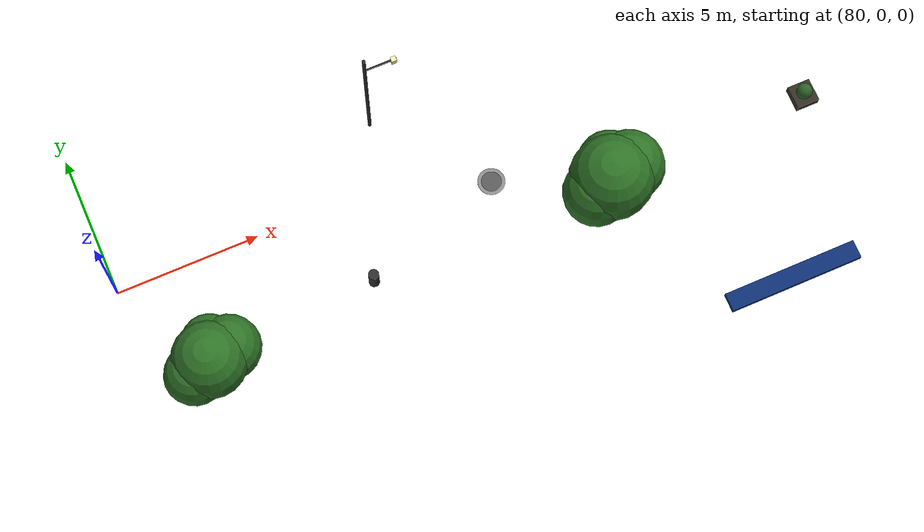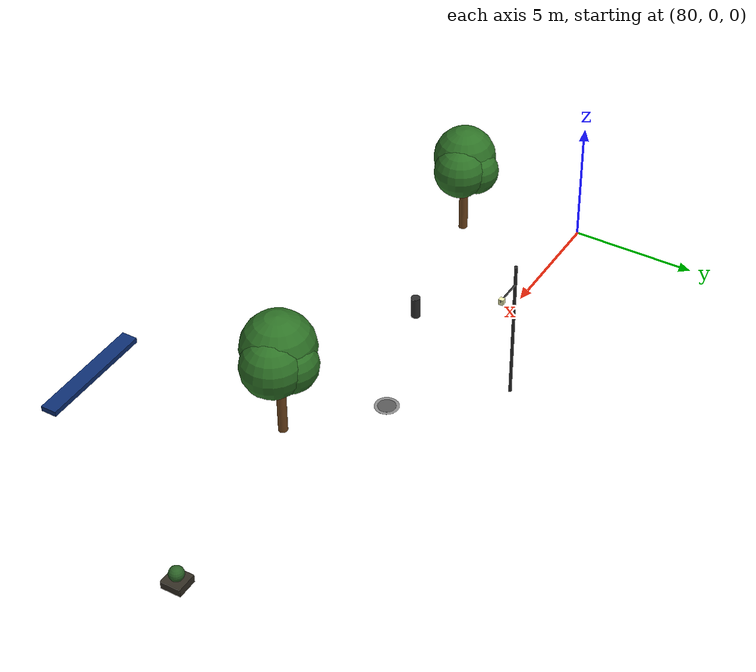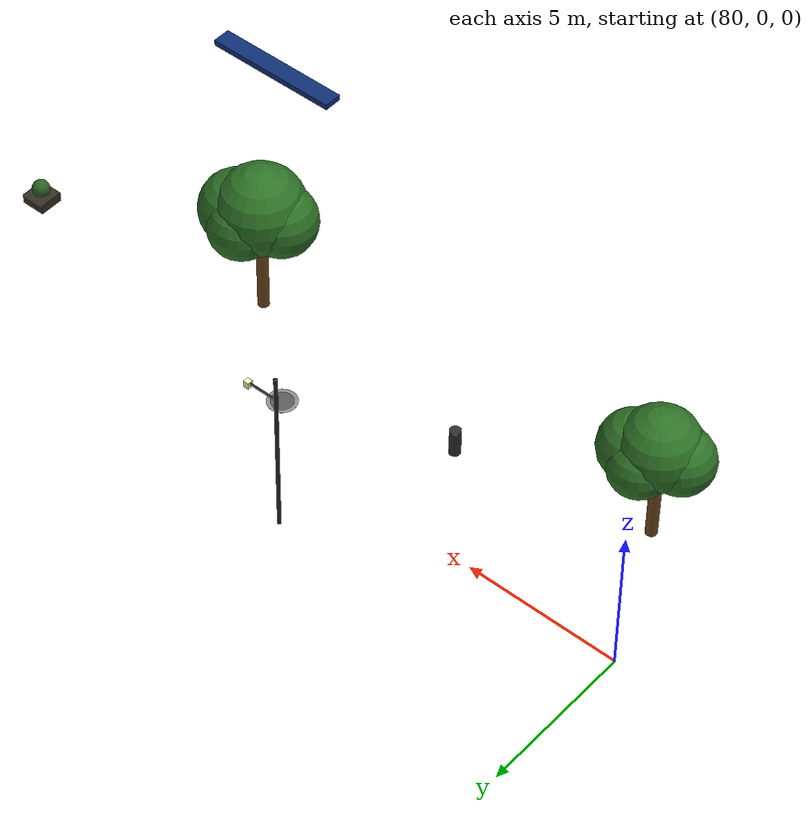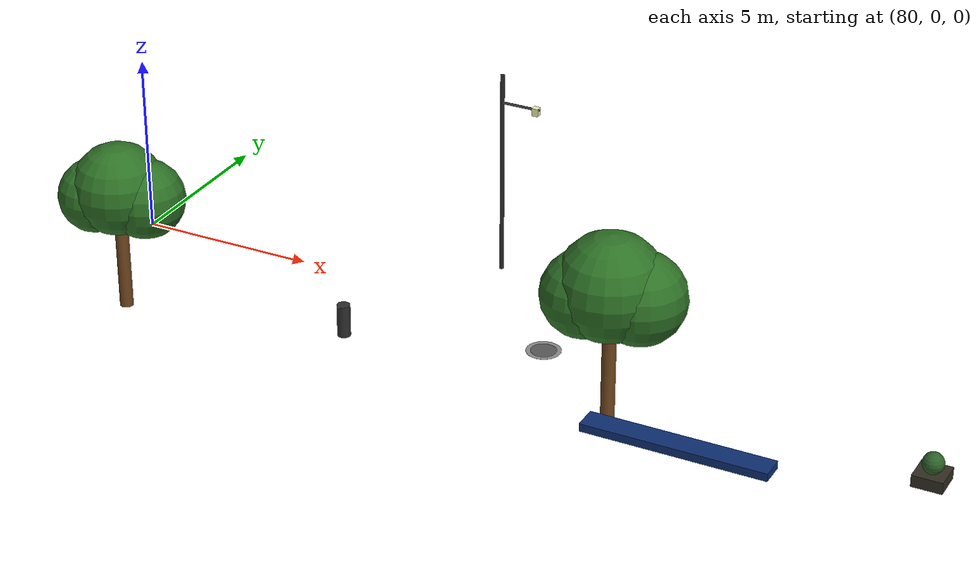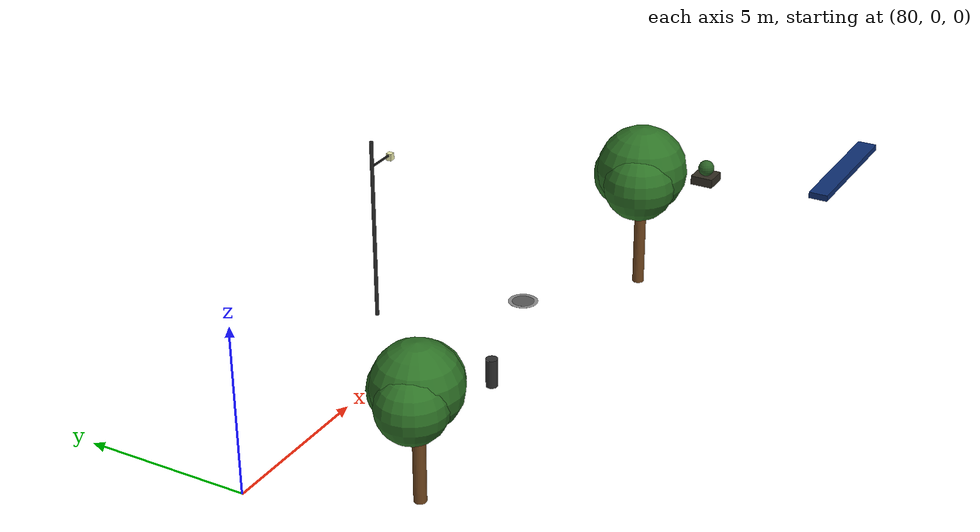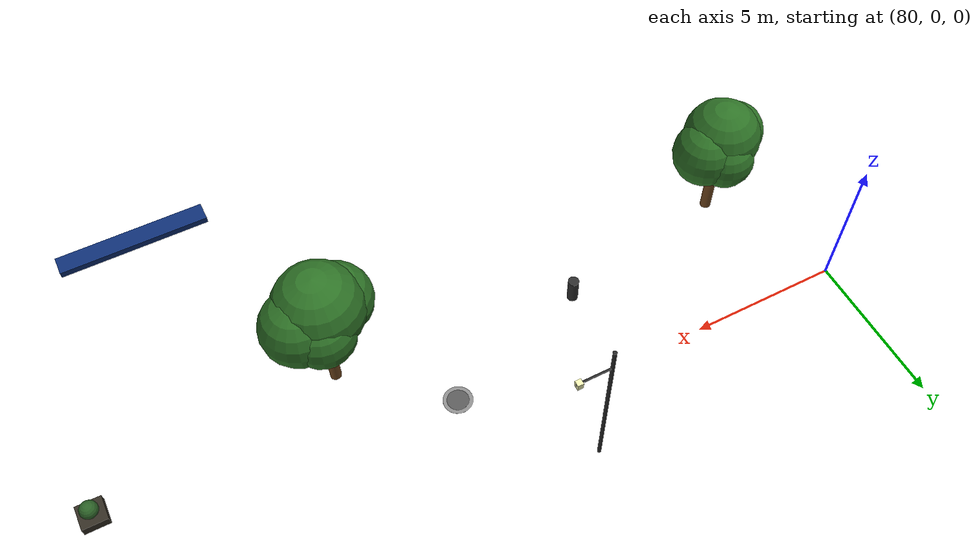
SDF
<sdf version="1.6">
 <world name="sidewalk_avenue">
  <model name="tree_7">
   <pose>82.000 -4.250 0.000 0.000 0.000 0.000</pose>
   <static>true</static>
   <link name="link">
    <collision name="cylinder_trunk_collision">
     <pose>0.000 0.000 1.500 0.000 0.000 0.000</pose>
     <geometry><cylinder><radius>0.180</radius><length>3.000</length></cylinder></geometry>
    </collision>
    <visual name="cylinder_trunk_visual">
     <pose>0.000 0.000 1.500 0.000 0.000 0.000</pose>
     <geometry><cylinder><radius>0.180</radius><length>3.000</length></cylinder></geometry>
     <material>
      <ambient>0.360 0.224 0.096 1.000</ambient>
      <diffuse>0.450 0.280 0.120 1.000</diffuse>
      <specular>0.050 0.050 0.050 1.000</specular>
     </material>
    </visual>
    <visual name="canopy_visual_0">
     <pose>0.000 0.000 3.480 0.000 0.000 0.000</pose>
     <geometry><sphere><radius>1.250</radius></sphere></geometry>
     <material>
      <ambient>0.144 0.360 0.120 1.000</ambient>
      <diffuse>0.180 0.450 0.150 1.000</diffuse>
      <specular>0.050 0.050 0.050 1.000</specular>
     </material>
    </visual>
    <visual name="canopy_visual_1">
     <pose>0.700 0.200 3.240 0.000 0.000 0.000</pose>
     <geometry><sphere><radius>1.062</radius></sphere></geometry>
     <material>
      <ambient>0.144 0.360 0.120 1.000</ambient>
      <diffuse>0.180 0.450 0.150 1.000</diffuse>
      <specular>0.050 0.050 0.050 1.000</specular>
     </material>
    </visual>
    <visual name="canopy_visual_2">
     <pose>-0.600 -0.200 3.240 0.000 0.000 0.000</pose>
     <geometry><sphere><radius>1.000</radius></sphere></geometry>
     <material>
      <ambient>0.144 0.360 0.120 1.000</ambient>
      <diffuse>0.180 0.450 0.150 1.000</diffuse>
      <specular>0.050 0.050 0.050 1.000</specular>
     </material>
    </visual>
    <visual name="canopy_visual_3">
     <pose>0.200 0.600 3.120 0.000 0.000 0.000</pose>
     <geometry><sphere><radius>0.938</radius></sphere></geometry>
     <material>
      <ambient>0.144 0.360 0.120 1.000</ambient>
      <diffuse>0.180 0.450 0.150 1.000</diffuse>
      <specular>0.050 0.050 0.050 1.000</specular>
     </material>
    </visual>
    <collision name="canopy_collision">
     <pose>0.000 0.000 3.360 0.000 0.000 0.000</pose>
     <geometry><sphere><radius>1.500</radius></sphere></geometry>
    </collision>
   </link>
   <plugin filename="gz-sim-label-system" name="gz::sim::systems::Label"><label>9</label></plugin>
  </model>
  <model name="tree_8">
   <pose>96.000 -3.850 0.000 0.000 0.000 0.000</pose>
   <static>true</static>
   <link name="link">
    <collision name="cylinder_trunk_collision">
     <pose>0.000 0.000 1.700 0.000 0.000 0.000</pose>
     <geometry><cylinder><radius>0.180</radius><length>3.400</length></cylinder></geometry>
    </collision>
    <visual name="cylinder_trunk_visual">
     <pose>0.000 0.000 1.700 0.000 0.000 0.000</pose>
     <geometry><cylinder><radius>0.180</radius><length>3.400</length></cylinder></geometry>
     <material>
      <ambient>0.360 0.224 0.096 1.000</ambient>
      <diffuse>0.450 0.280 0.120 1.000</diffuse>
      <specular>0.050 0.050 0.050 1.000</specular>
     </material>
    </visual>
    <visual name="canopy_visual_0">
     <pose>0.000 0.000 3.880 0.000 0.000 0.000</pose>
     <geometry><sphere><radius>1.400</radius></sphere></geometry>
     <material>
      <ambient>0.144 0.360 0.120 1.000</ambient>
      <diffuse>0.180 0.450 0.150 1.000</diffuse>
      <specular>0.050 0.050 0.050 1.000</specular>
     </material>
    </visual>
    <visual name="canopy_visual_1">
     <pose>0.700 0.200 3.640 0.000 0.000 0.000</pose>
     <geometry><sphere><radius>1.190</radius></sphere></geometry>
     <material>
      <ambient>0.144 0.360 0.120 1.000</ambient>
      <diffuse>0.180 0.450 0.150 1.000</diffuse>
      <specular>0.050 0.050 0.050 1.000</specular>
     </material>
    </visual>
    <visual name="canopy_visual_2">
     <pose>-0.600 -0.200 3.640 0.000 0.000 0.000</pose>
     <geometry><sphere><radius>1.120</radius></sphere></geometry>
     <material>
      <ambient>0.144 0.360 0.120 1.000</ambient>
      <diffuse>0.180 0.450 0.150 1.000</diffuse>
      <specular>0.050 0.050 0.050 1.000</specular>
     </material>
    </visual>
    <visual name="canopy_visual_3">
     <pose>0.200 0.600 3.520 0.000 0.000 0.000</pose>
     <geometry><sphere><radius>1.050</radius></sphere></geometry>
     <material>
      <ambient>0.144 0.360 0.120 1.000</ambient>
      <diffuse>0.180 0.450 0.150 1.000</diffuse>
      <specular>0.050 0.050 0.050 1.000</specular>
     </material>
    </visual>
    <collision name="canopy_collision">
     <pose>0.000 0.000 3.760 0.000 0.000 0.000</pose>
     <geometry><sphere><radius>1.680</radius></sphere></geometry>
    </collision>
   </link>
   <plugin filename="gz-sim-label-system" name="gz::sim::systems::Label"><label>9</label></plugin>
  </model>
  <model name="lamp_4">
   <pose>90.000 2.200 0.000 0.000 0.000 0.000</pose>
   <static>true</static>
   <link name="link">
    <collision name="pole_collision">
     <pose>0.000 0.000 2.900 0.000 0.000 0.000</pose>
     <geometry><cylinder><radius>0.060</radius><length>5.800</length></cylinder></geometry>
    </collision>
    <visual name="pole_visual">
     <pose>0.000 0.000 2.900 0.000 0.000 0.000</pose>
     <geometry><cylinder><radius>0.060</radius><length>5.800</length></cylinder></geometry>
     <material>
      <ambient>0.120 0.120 0.120 1.000</ambient>
      <diffuse>0.150 0.150 0.150 1.000</diffuse>
      <specular>0.050 0.050 0.050 1.000</specular>
     </material>
    </visual>
    <visual name="arm_visual">
     <pose>0.550 0.000 5.000 0.000 0.000 0.000</pose>
     <geometry><box><size>1.100 0.050 0.050</size></box></geometry>
     <material>
      <ambient>0.120 0.120 0.120 1.000</ambient>
      <diffuse>0.150 0.150 0.150 1.000</diffuse>
      <specular>0.050 0.050 0.050 1.000</specular>
     </material>
    </visual>
    <visual name="lamp_visual">
     <pose>1.000 0.000 4.950 0.000 0.000 0.000</pose>
     <geometry><box><size>0.180 0.180 0.220</size></box></geometry>
     <material>
      <ambient>0.760 0.760 0.560 1.000</ambient>
      <diffuse>0.950 0.950 0.700 1.000</diffuse>
      <specular>0.050 0.050 0.050 1.000</specular>
     </material>
    </visual>
   </link>
   <plugin filename="gz-sim-label-system" name="gz::sim::systems::Label"><label>6</label></plugin>
  </model>
  <model name="trash_3">
   <pose>88.000 -3.000 0.000 0.000 0.000 0.000</pose>
   <static>true</static>
   <link name="link">
    <collision name="bin_collision">
     <pose>0.000 0.000 0.450 0.000 0.000 0.000</pose>
     <geometry><cylinder><radius>0.180</radius><length>0.900</length></cylinder></geometry>
    </collision>
    <visual name="bin_visual">
     <pose>0.000 0.000 0.450 0.000 0.000 0.000</pose>
     <geometry><cylinder><radius>0.180</radius><length>0.900</length></cylinder></geometry>
     <material>
      <ambient>0.144 0.144 0.144 1.000</ambient>
      <diffuse>0.180 0.180 0.180 1.000</diffuse>
      <specular>0.050 0.050 0.050 1.000</specular>
     </material>
    </visual>
   </link>
   <plugin filename="gz-sim-label-system" name="gz::sim::systems::Label"><label>3</label></plugin>
  </model>
  <model name="awning_3">
   <pose>100.000 -9.000 3.400 0.000 0.000 0.000</pose>
   <static>true</static>
   <link name="link">
    <visual name="awning_visual">
     <geometry><box><size>4.500 0.600 0.200</size></box></geometry>
     <material>
      <ambient>0.040 0.144 0.360 1.000</ambient>
      <diffuse>0.050 0.180 0.450 1.000</diffuse>
      <specular>0.050 0.050 0.050 1.000</specular>
     </material>
    </visual>
   </link>
   <plugin filename="gz-sim-label-system" name="gz::sim::systems::Label"><label>3</label></plugin>
  </model>
  <model name="pothole_5">
   <pose>93.000 -1.300 0.000 0.000 0.000 0.000</pose>
   <static>true</static>
   <link name="link">
    <visual name="visual">
     <pose>0.000 0.000 -0.018 0.000 0.000 0.000</pose>
     <geometry><cylinder><radius>0.350</radius><length>0.010</length></cylinder></geometry>
     <material>
      <ambient>0.280 0.280 0.280 1.000</ambient>
      <diffuse>0.350 0.350 0.350 1.000</diffuse>
      <specular>0.050 0.050 0.050 1.000</specular>
     </material>
    </visual>
    <visual name="visual_patch">
     <pose>0.000 0.000 -0.016 0.000 0.000 0.000</pose>
     <geometry><cylinder><radius>0.473</radius><length>0.004</length></cylinder></geometry>
     <material>
      <ambient>0.440 0.440 0.440 1.000</ambient>
      <diffuse>0.550 0.550 0.550 1.000</diffuse>
      <specular>0.050 0.050 0.050 1.000</specular>
     </material>
    </visual>
   </link>
   <plugin filename="gz-sim-label-system" name="gz::sim::systems::Label"><label>1</label></plugin>
  </model>
  <model name="planter_4">
   <pose>104.000 -2.700 0.160 0.000 0.000 0.000</pose>
   <static>true</static>
   <link name="link">
    <collision name="collision"><geometry><box><size>0.800 0.800 0.320</size></box></geometry></collision>
    <visual name="visual">
     <geometry><box><size>0.800 0.800 0.320</size></box></geometry>
     <material>
      <ambient>0.160 0.144 0.112 1.000</ambient>
      <diffuse>0.200 0.180 0.140 1.000</diffuse>
      <specular>0.050 0.050 0.050 1.000</specular>
     </material>
    </visual>
   </link>
   <plugin filename="gz-sim-label-system" name="gz::sim::systems::Label"><label>3</label></plugin>
  </model>
  <model name="shrub_4">
   <pose>104.000 -2.700 0.550 0.000 0.000 0.000</pose>
   <static>true</static>
   <link name="link">
    <collision name="collision"><geometry><sphere><radius>0.280</radius></sphere></geometry></collision>
    <visual name="visual">
     <geometry><sphere><radius>0.280</radius></sphere></geometry>
     <material>
      <ambient>0.136 0.304 0.120 1.000</ambient>
      <diffuse>0.170 0.380 0.150 1.000</diffuse>
      <specular>0.050 0.050 0.050 1.000</specular>
     </material>
    </visual>
   </link>
   <plugin filename="gz-sim-label-system" name="gz::sim::systems::Label"><label>9</label></plugin>
  </model>
 </world>
</sdf>
